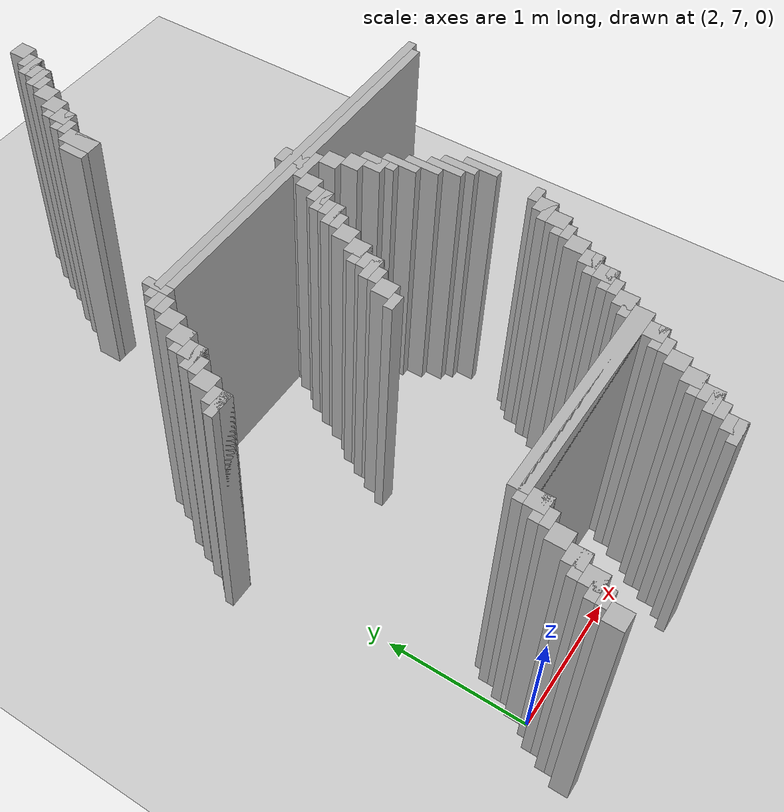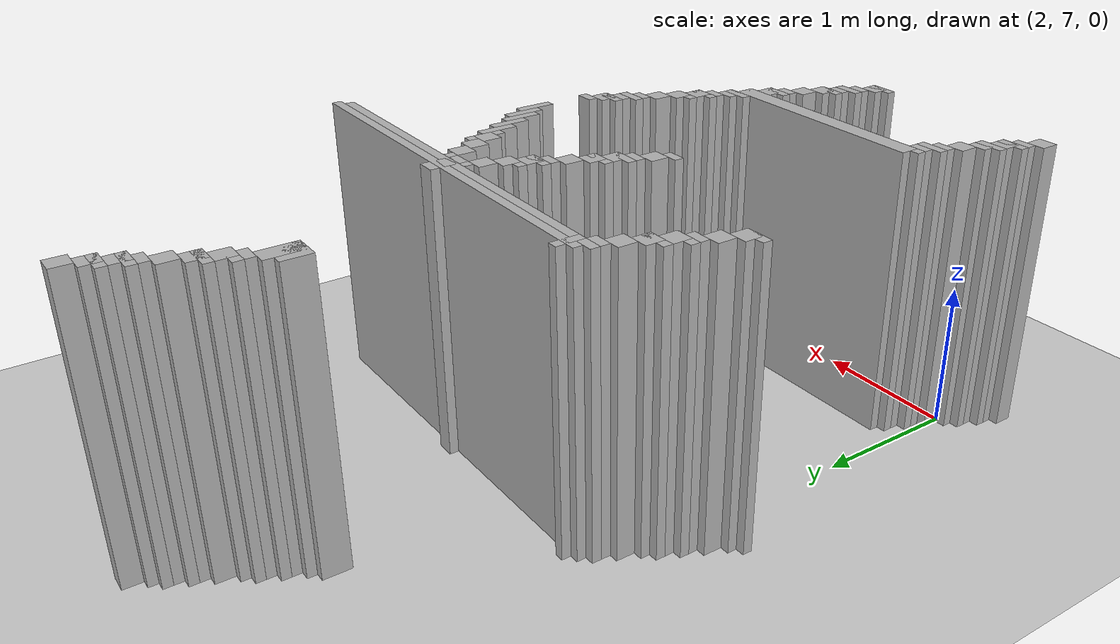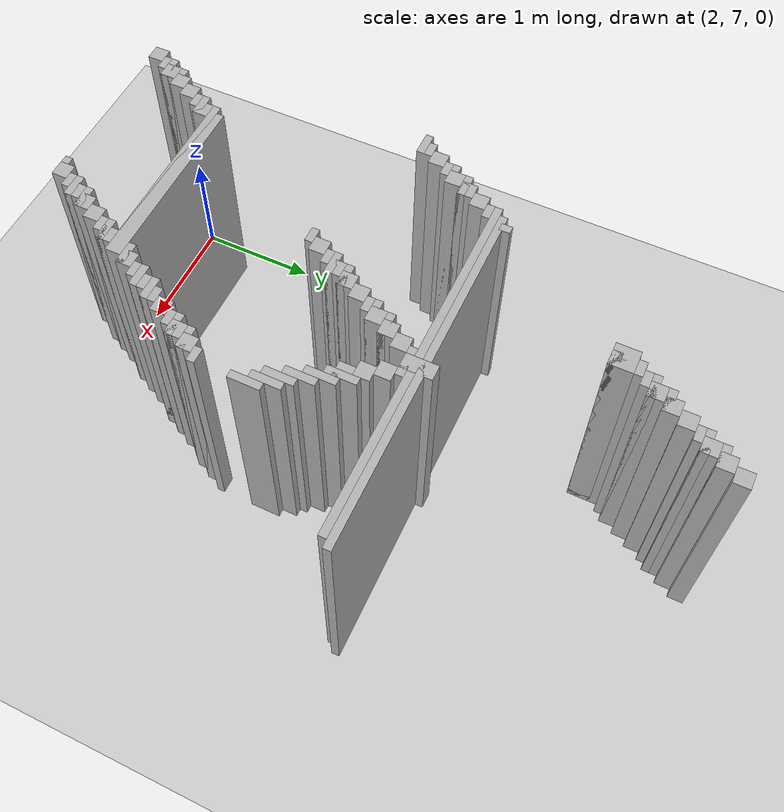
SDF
<sdf version="1.6">
 <world name="slam_world">
  <model name="ground_plane">
   <static>true</static>
   <link name="link">
    <collision name="collision">
     <geometry><plane><normal>0 0 1</normal><size>100 100</size></plane></geometry>
    </collision>
    <visual name="visual">
     <geometry><plane><normal>0 0 1</normal><size>100 100</size></plane></geometry>
     <material>
      <ambient>0.8 0.8 0.8 1</ambient>
      <diffuse>0.8 0.8 0.8 1</diffuse>
      <specular>0.8 0.8 0.8 1</specular>
     </material>
    </visual>
   </link>
  </model>
  <model name="wall_1160">
   <static>true</static>
   <pose>3.5106382978723403 12.063829787234042 1.0 0 0 0</pose>
   <link name="link">
    <collision name="collision">
     <geometry><box><size>0.1276595744680851 0.1276595744680851 2.0</size></box></geometry>
    </collision>
    <visual name="visual">
     <geometry><box><size>0.1276595744680851 0.1276595744680851 2.0</size></box></geometry>
     <material><ambient>0.5 0.5 0.5 1</ambient><diffuse>0.7 0.7 0.7 1</diffuse></material>
    </visual>
   </link>
  </model>
  <model name="wall_1170">
   <static>true</static>
   <pose>3.4468085106382977 11.936170212765957 1.0 0 0 0</pose>
   <link name="link">
    <collision name="collision">
     <geometry><box><size>0.1276595744680851 0.1276595744680851 2.0</size></box></geometry>
    </collision>
    <visual name="visual">
     <geometry><box><size>0.1276595744680851 0.1276595744680851 2.0</size></box></geometry>
     <material><ambient>0.5 0.5 0.5 1</ambient><diffuse>0.7 0.7 0.7 1</diffuse></material>
    </visual>
   </link>
  </model>
  <model name="wall_1180">
   <static>true</static>
   <pose>3.4148936170212765 11.904255319148936 1.0 0 0 0</pose>
   <link name="link">
    <collision name="collision">
     <geometry><box><size>0.19148936170212766 0.06382978723404255 2.0</size></box></geometry>
    </collision>
    <visual name="visual">
     <geometry><box><size>0.19148936170212766 0.06382978723404255 2.0</size></box></geometry>
     <material><ambient>0.5 0.5 0.5 1</ambient><diffuse>0.7 0.7 0.7 1</diffuse></material>
    </visual>
   </link>
  </model>
  <model name="wall_1190">
   <static>true</static>
   <pose>3.382978723404255 11.808510638297872 1.0 0 0 0</pose>
   <link name="link">
    <collision name="collision">
     <geometry><box><size>0.1276595744680851 0.1276595744680851 2.0</size></box></geometry>
    </collision>
    <visual name="visual">
     <geometry><box><size>0.1276595744680851 0.1276595744680851 2.0</size></box></geometry>
     <material><ambient>0.5 0.5 0.5 1</ambient><diffuse>0.7 0.7 0.7 1</diffuse></material>
    </visual>
   </link>
  </model>
  <model name="wall_1197">
   <static>true</static>
   <pose>3.351063829787234 11.77659574468085 1.0 0 0 0</pose>
   <link name="link">
    <collision name="collision">
     <geometry><box><size>0.19148936170212766 0.06382978723404255 2.0</size></box></geometry>
    </collision>
    <visual name="visual">
     <geometry><box><size>0.19148936170212766 0.06382978723404255 2.0</size></box></geometry>
     <material><ambient>0.5 0.5 0.5 1</ambient><diffuse>0.7 0.7 0.7 1</diffuse></material>
    </visual>
   </link>
  </model>
  <model name="wall_1207">
   <static>true</static>
   <pose>3.3191489361702127 11.712765957446807 1.0 0 0 0</pose>
   <link name="link">
    <collision name="collision">
     <geometry><box><size>0.1276595744680851 0.06382978723404255 2.0</size></box></geometry>
    </collision>
    <visual name="visual">
     <geometry><box><size>0.1276595744680851 0.06382978723404255 2.0</size></box></geometry>
     <material><ambient>0.5 0.5 0.5 1</ambient><diffuse>0.7 0.7 0.7 1</diffuse></material>
    </visual>
   </link>
  </model>
  <model name="wall_1213">
   <static>true</static>
   <pose>3.25531914893617 11.617021276595743 1.0 0 0 0</pose>
   <link name="link">
    <collision name="collision">
     <geometry><box><size>0.1276595744680851 0.1276595744680851 2.0</size></box></geometry>
    </collision>
    <visual name="visual">
     <geometry><box><size>0.1276595744680851 0.1276595744680851 2.0</size></box></geometry>
     <material><ambient>0.5 0.5 0.5 1</ambient><diffuse>0.7 0.7 0.7 1</diffuse></material>
    </visual>
   </link>
  </model>
  <model name="wall_1223">
   <static>true</static>
   <pose>3.1914893617021276 11.489361702127658 1.0 0 0 0</pose>
   <link name="link">
    <collision name="collision">
     <geometry><box><size>0.1276595744680851 0.1276595744680851 2.0</size></box></geometry>
    </collision>
    <visual name="visual">
     <geometry><box><size>0.1276595744680851 0.1276595744680851 2.0</size></box></geometry>
     <material><ambient>0.5 0.5 0.5 1</ambient><diffuse>0.7 0.7 0.7 1</diffuse></material>
    </visual>
   </link>
  </model>
  <model name="wall_1233">
   <static>true</static>
   <pose>3.1595744680851063 11.457446808510637 1.0 0 0 0</pose>
   <link name="link">
    <collision name="collision">
     <geometry><box><size>0.19148936170212766 0.06382978723404255 2.0</size></box></geometry>
    </collision>
    <visual name="visual">
     <geometry><box><size>0.19148936170212766 0.06382978723404255 2.0</size></box></geometry>
     <material><ambient>0.5 0.5 0.5 1</ambient><diffuse>0.7 0.7 0.7 1</diffuse></material>
    </visual>
   </link>
  </model>
  <model name="wall_1243">
   <static>true</static>
   <pose>3.127659574468085 11.361702127659573 1.0 0 0 0</pose>
   <link name="link">
    <collision name="collision">
     <geometry><box><size>0.1276595744680851 0.1276595744680851 2.0</size></box></geometry>
    </collision>
    <visual name="visual">
     <geometry><box><size>0.1276595744680851 0.1276595744680851 2.0</size></box></geometry>
     <material><ambient>0.5 0.5 0.5 1</ambient><diffuse>0.7 0.7 0.7 1</diffuse></material>
    </visual>
   </link>
  </model>
  <model name="wall_1249">
   <static>true</static>
   <pose>3.095744680851064 11.329787234042552 1.0 0 0 0</pose>
   <link name="link">
    <collision name="collision">
     <geometry><box><size>0.19148936170212766 0.06382978723404255 2.0</size></box></geometry>
    </collision>
    <visual name="visual">
     <geometry><box><size>0.19148936170212766 0.06382978723404255 2.0</size></box></geometry>
     <material><ambient>0.5 0.5 0.5 1</ambient><diffuse>0.7 0.7 0.7 1</diffuse></material>
    </visual>
   </link>
  </model>
  <model name="wall_1259">
   <static>true</static>
   <pose>3.0638297872340425 11.26595744680851 1.0 0 0 0</pose>
   <link name="link">
    <collision name="collision">
     <geometry><box><size>0.1276595744680851 0.06382978723404255 2.0</size></box></geometry>
    </collision>
    <visual name="visual">
     <geometry><box><size>0.1276595744680851 0.06382978723404255 2.0</size></box></geometry>
     <material><ambient>0.5 0.5 0.5 1</ambient><diffuse>0.7 0.7 0.7 1</diffuse></material>
    </visual>
   </link>
  </model>
  <model name="wall_1265">
   <static>true</static>
   <pose>2.9999999999999996 11.106382978723403 1.0 0 0 0</pose>
   <link name="link">
    <collision name="collision">
     <geometry><box><size>0.1276595744680851 0.2553191489361702 2.0</size></box></geometry>
    </collision>
    <visual name="visual">
     <geometry><box><size>0.1276595744680851 0.2553191489361702 2.0</size></box></geometry>
     <material><ambient>0.5 0.5 0.5 1</ambient><diffuse>0.7 0.7 0.7 1</diffuse></material>
    </visual>
   </link>
  </model>
  <model name="wall_1272">
   <static>true</static>
   <pose>2.9680851063829783 11.074468085106382 1.0 0 0 0</pose>
   <link name="link">
    <collision name="collision">
     <geometry><box><size>0.19148936170212766 0.19148936170212766 2.0</size></box></geometry>
    </collision>
    <visual name="visual">
     <geometry><box><size>0.19148936170212766 0.19148936170212766 2.0</size></box></geometry>
     <material><ambient>0.5 0.5 0.5 1</ambient><diffuse>0.7 0.7 0.7 1</diffuse></material>
    </visual>
   </link>
  </model>
  <model name="wall_1366">
   <static>true</static>
   <pose>2.2659574468085104 9.861702127659573 1.0 0 0 0</pose>
   <link name="link">
    <collision name="collision">
     <geometry><box><size>0.06382978723404255 0.19148936170212766 2.0</size></box></geometry>
    </collision>
    <visual name="visual">
     <geometry><box><size>0.06382978723404255 0.19148936170212766 2.0</size></box></geometry>
     <material><ambient>0.5 0.5 0.5 1</ambient><diffuse>0.7 0.7 0.7 1</diffuse></material>
    </visual>
   </link>
  </model>
  <model name="wall_1367">
   <static>true</static>
   <pose>3.6382978723404253 9.829787234042552 1.0 0 0 0</pose>
   <link name="link">
    <collision name="collision">
     <geometry><box><size>0.1276595744680851 0.2553191489361702 2.0</size></box></geometry>
    </collision>
    <visual name="visual">
     <geometry><box><size>0.1276595744680851 0.2553191489361702 2.0</size></box></geometry>
     <material><ambient>0.5 0.5 0.5 1</ambient><diffuse>0.7 0.7 0.7 1</diffuse></material>
    </visual>
   </link>
  </model>
  <model name="wall_1374">
   <static>true</static>
   <pose>3.6382978723404253 9.861702127659573 1.0 0 0 0</pose>
   <link name="link">
    <collision name="collision">
     <geometry><box><size>2.936170212765957 0.06382978723404255 2.0</size></box></geometry>
    </collision>
    <visual name="visual">
     <geometry><box><size>2.936170212765957 0.06382978723404255 2.0</size></box></geometry>
     <material><ambient>0.5 0.5 0.5 1</ambient><diffuse>0.7 0.7 0.7 1</diffuse></material>
    </visual>
   </link>
  </model>
  <model name="wall_1379">
   <static>true</static>
   <pose>3.574468085106383 9.797872340425531 1.0 0 0 0</pose>
   <link name="link">
    <collision name="collision">
     <geometry><box><size>2.936170212765957 0.06382978723404255 2.0</size></box></geometry>
    </collision>
    <visual name="visual">
     <geometry><box><size>2.936170212765957 0.06382978723404255 2.0</size></box></geometry>
     <material><ambient>0.5 0.5 0.5 1</ambient><diffuse>0.7 0.7 0.7 1</diffuse></material>
    </visual>
   </link>
  </model>
  <model name="wall_1384">
   <static>true</static>
   <pose>2.1702127659574466 9.734042553191488 1.0 0 0 0</pose>
   <link name="link">
    <collision name="collision">
     <geometry><box><size>0.1276595744680851 0.06382978723404255 2.0</size></box></geometry>
    </collision>
    <visual name="visual">
     <geometry><box><size>0.1276595744680851 0.06382978723404255 2.0</size></box></geometry>
     <material><ambient>0.5 0.5 0.5 1</ambient><diffuse>0.7 0.7 0.7 1</diffuse></material>
    </visual>
   </link>
  </model>
  <model name="wall_1385">
   <static>true</static>
   <pose>3.6382978723404253 9.734042553191488 1.0 0 0 0</pose>
   <link name="link">
    <collision name="collision">
     <geometry><box><size>0.2553191489361702 0.06382978723404255 2.0</size></box></geometry>
    </collision>
    <visual name="visual">
     <geometry><box><size>0.2553191489361702 0.06382978723404255 2.0</size></box></geometry>
     <material><ambient>0.5 0.5 0.5 1</ambient><diffuse>0.7 0.7 0.7 1</diffuse></material>
    </visual>
   </link>
  </model>
  <model name="wall_1390">
   <static>true</static>
   <pose>2.106382978723404 9.638297872340425 1.0 0 0 0</pose>
   <link name="link">
    <collision name="collision">
     <geometry><box><size>0.1276595744680851 0.1276595744680851 2.0</size></box></geometry>
    </collision>
    <visual name="visual">
     <geometry><box><size>0.1276595744680851 0.1276595744680851 2.0</size></box></geometry>
     <material><ambient>0.5 0.5 0.5 1</ambient><diffuse>0.7 0.7 0.7 1</diffuse></material>
    </visual>
   </link>
  </model>
  <model name="wall_1391">
   <static>true</static>
   <pose>3.5106382978723403 9.638297872340425 1.0 0 0 0</pose>
   <link name="link">
    <collision name="collision">
     <geometry><box><size>0.1276595744680851 0.1276595744680851 2.0</size></box></geometry>
    </collision>
    <visual name="visual">
     <geometry><box><size>0.1276595744680851 0.1276595744680851 2.0</size></box></geometry>
     <material><ambient>0.5 0.5 0.5 1</ambient><diffuse>0.7 0.7 0.7 1</diffuse></material>
    </visual>
   </link>
  </model>
  <model name="wall_1392">
   <static>true</static>
   <pose>3.7659574468085104 9.638297872340425 1.0 0 0 0</pose>
   <link name="link">
    <collision name="collision">
     <geometry><box><size>0.1276595744680851 0.1276595744680851 2.0</size></box></geometry>
    </collision>
    <visual name="visual">
     <geometry><box><size>0.1276595744680851 0.1276595744680851 2.0</size></box></geometry>
     <material><ambient>0.5 0.5 0.5 1</ambient><diffuse>0.7 0.7 0.7 1</diffuse></material>
    </visual>
   </link>
  </model>
  <model name="wall_1398">
   <static>true</static>
   <pose>2.0425531914893615 9.51063829787234 1.0 0 0 0</pose>
   <link name="link">
    <collision name="collision">
     <geometry><box><size>0.1276595744680851 0.1276595744680851 2.0</size></box></geometry>
    </collision>
    <visual name="visual">
     <geometry><box><size>0.1276595744680851 0.1276595744680851 2.0</size></box></geometry>
     <material><ambient>0.5 0.5 0.5 1</ambient><diffuse>0.7 0.7 0.7 1</diffuse></material>
    </visual>
   </link>
  </model>
  <model name="wall_1399">
   <static>true</static>
   <pose>3.4468085106382977 9.51063829787234 1.0 0 0 0</pose>
   <link name="link">
    <collision name="collision">
     <geometry><box><size>0.1276595744680851 0.1276595744680851 2.0</size></box></geometry>
    </collision>
    <visual name="visual">
     <geometry><box><size>0.1276595744680851 0.1276595744680851 2.0</size></box></geometry>
     <material><ambient>0.5 0.5 0.5 1</ambient><diffuse>0.7 0.7 0.7 1</diffuse></material>
    </visual>
   </link>
  </model>
  <model name="wall_1400">
   <static>true</static>
   <pose>3.829787234042553 9.51063829787234 1.0 0 0 0</pose>
   <link name="link">
    <collision name="collision">
     <geometry><box><size>0.1276595744680851 0.1276595744680851 2.0</size></box></geometry>
    </collision>
    <visual name="visual">
     <geometry><box><size>0.1276595744680851 0.1276595744680851 2.0</size></box></geometry>
     <material><ambient>0.5 0.5 0.5 1</ambient><diffuse>0.7 0.7 0.7 1</diffuse></material>
    </visual>
   </link>
  </model>
  <model name="wall_1406">
   <static>true</static>
   <pose>2.0106382978723403 9.478723404255318 1.0 0 0 0</pose>
   <link name="link">
    <collision name="collision">
     <geometry><box><size>0.19148936170212766 0.06382978723404255 2.0</size></box></geometry>
    </collision>
    <visual name="visual">
     <geometry><box><size>0.19148936170212766 0.06382978723404255 2.0</size></box></geometry>
     <material><ambient>0.5 0.5 0.5 1</ambient><diffuse>0.7 0.7 0.7 1</diffuse></material>
    </visual>
   </link>
  </model>
  <model name="wall_1407">
   <static>true</static>
   <pose>3.4148936170212765 9.478723404255318 1.0 0 0 0</pose>
   <link name="link">
    <collision name="collision">
     <geometry><box><size>0.19148936170212766 0.06382978723404255 2.0</size></box></geometry>
    </collision>
    <visual name="visual">
     <geometry><box><size>0.19148936170212766 0.06382978723404255 2.0</size></box></geometry>
     <material><ambient>0.5 0.5 0.5 1</ambient><diffuse>0.7 0.7 0.7 1</diffuse></material>
    </visual>
   </link>
  </model>
  <model name="wall_1408">
   <static>true</static>
   <pose>3.9255319148936167 9.382978723404255 1.0 0 0 0</pose>
   <link name="link">
    <collision name="collision">
     <geometry><box><size>0.06382978723404255 0.2553191489361702 2.0</size></box></geometry>
    </collision>
    <visual name="visual">
     <geometry><box><size>0.06382978723404255 0.2553191489361702 2.0</size></box></geometry>
     <material><ambient>0.5 0.5 0.5 1</ambient><diffuse>0.7 0.7 0.7 1</diffuse></material>
    </visual>
   </link>
  </model>
  <model name="wall_1414">
   <static>true</static>
   <pose>1.978723404255319 9.382978723404255 1.0 0 0 0</pose>
   <link name="link">
    <collision name="collision">
     <geometry><box><size>0.1276595744680851 0.1276595744680851 2.0</size></box></geometry>
    </collision>
    <visual name="visual">
     <geometry><box><size>0.1276595744680851 0.1276595744680851 2.0</size></box></geometry>
     <material><ambient>0.5 0.5 0.5 1</ambient><diffuse>0.7 0.7 0.7 1</diffuse></material>
    </visual>
   </link>
  </model>
  <model name="wall_1415">
   <static>true</static>
   <pose>3.382978723404255 9.382978723404255 1.0 0 0 0</pose>
   <link name="link">
    <collision name="collision">
     <geometry><box><size>0.1276595744680851 0.1276595744680851 2.0</size></box></geometry>
    </collision>
    <visual name="visual">
     <geometry><box><size>0.1276595744680851 0.1276595744680851 2.0</size></box></geometry>
     <material><ambient>0.5 0.5 0.5 1</ambient><diffuse>0.7 0.7 0.7 1</diffuse></material>
    </visual>
   </link>
  </model>
  <model name="wall_1416">
   <static>true</static>
   <pose>3.8936170212765955 9.382978723404255 1.0 0 0 0</pose>
   <link name="link">
    <collision name="collision">
     <geometry><box><size>0.1276595744680851 0.1276595744680851 2.0</size></box></geometry>
    </collision>
    <visual name="visual">
     <geometry><box><size>0.1276595744680851 0.1276595744680851 2.0</size></box></geometry>
     <material><ambient>0.5 0.5 0.5 1</ambient><diffuse>0.7 0.7 0.7 1</diffuse></material>
    </visual>
   </link>
  </model>
  <model name="wall_1420">
   <static>true</static>
   <pose>1.9468085106382977 9.351063829787233 1.0 0 0 0</pose>
   <link name="link">
    <collision name="collision">
     <geometry><box><size>0.19148936170212766 0.06382978723404255 2.0</size></box></geometry>
    </collision>
    <visual name="visual">
     <geometry><box><size>0.19148936170212766 0.06382978723404255 2.0</size></box></geometry>
     <material><ambient>0.5 0.5 0.5 1</ambient><diffuse>0.7 0.7 0.7 1</diffuse></material>
    </visual>
   </link>
  </model>
  <model name="wall_1421">
   <static>true</static>
   <pose>3.351063829787234 9.351063829787233 1.0 0 0 0</pose>
   <link name="link">
    <collision name="collision">
     <geometry><box><size>0.19148936170212766 0.06382978723404255 2.0</size></box></geometry>
    </collision>
    <visual name="visual">
     <geometry><box><size>0.19148936170212766 0.06382978723404255 2.0</size></box></geometry>
     <material><ambient>0.5 0.5 0.5 1</ambient><diffuse>0.7 0.7 0.7 1</diffuse></material>
    </visual>
   </link>
  </model>
  <model name="wall_1422">
   <static>true</static>
   <pose>3.9893617021276593 9.25531914893617 1.0 0 0 0</pose>
   <link name="link">
    <collision name="collision">
     <geometry><box><size>0.06382978723404255 0.2553191489361702 2.0</size></box></geometry>
    </collision>
    <visual name="visual">
     <geometry><box><size>0.06382978723404255 0.2553191489361702 2.0</size></box></geometry>
     <material><ambient>0.5 0.5 0.5 1</ambient><diffuse>0.7 0.7 0.7 1</diffuse></material>
    </visual>
   </link>
  </model>
  <model name="wall_1428">
   <static>true</static>
   <pose>1.9148936170212765 9.287234042553191 1.0 0 0 0</pose>
   <link name="link">
    <collision name="collision">
     <geometry><box><size>0.1276595744680851 0.06382978723404255 2.0</size></box></geometry>
    </collision>
    <visual name="visual">
     <geometry><box><size>0.1276595744680851 0.06382978723404255 2.0</size></box></geometry>
     <material><ambient>0.5 0.5 0.5 1</ambient><diffuse>0.7 0.7 0.7 1</diffuse></material>
    </visual>
   </link>
  </model>
  <model name="wall_1429">
   <static>true</static>
   <pose>3.3191489361702127 9.287234042553191 1.0 0 0 0</pose>
   <link name="link">
    <collision name="collision">
     <geometry><box><size>0.1276595744680851 0.06382978723404255 2.0</size></box></geometry>
    </collision>
    <visual name="visual">
     <geometry><box><size>0.1276595744680851 0.06382978723404255 2.0</size></box></geometry>
     <material><ambient>0.5 0.5 0.5 1</ambient><diffuse>0.7 0.7 0.7 1</diffuse></material>
    </visual>
   </link>
  </model>
  <model name="wall_1433">
   <static>true</static>
   <pose>1.851063829787234 9.191489361702127 1.0 0 0 0</pose>
   <link name="link">
    <collision name="collision">
     <geometry><box><size>0.1276595744680851 0.1276595744680851 2.0</size></box></geometry>
    </collision>
    <visual name="visual">
     <geometry><box><size>0.1276595744680851 0.1276595744680851 2.0</size></box></geometry>
     <material><ambient>0.5 0.5 0.5 1</ambient><diffuse>0.7 0.7 0.7 1</diffuse></material>
    </visual>
   </link>
  </model>
  <model name="wall_1434">
   <static>true</static>
   <pose>3.25531914893617 9.191489361702127 1.0 0 0 0</pose>
   <link name="link">
    <collision name="collision">
     <geometry><box><size>0.1276595744680851 0.1276595744680851 2.0</size></box></geometry>
    </collision>
    <visual name="visual">
     <geometry><box><size>0.1276595744680851 0.1276595744680851 2.0</size></box></geometry>
     <material><ambient>0.5 0.5 0.5 1</ambient><diffuse>0.7 0.7 0.7 1</diffuse></material>
    </visual>
   </link>
  </model>
  <model name="wall_1435">
   <static>true</static>
   <pose>4.053191489361701 9.127659574468085 1.0 0 0 0</pose>
   <link name="link">
    <collision name="collision">
     <geometry><box><size>0.06382978723404255 0.2553191489361702 2.0</size></box></geometry>
    </collision>
    <visual name="visual">
     <geometry><box><size>0.06382978723404255 0.2553191489361702 2.0</size></box></geometry>
     <material><ambient>0.5 0.5 0.5 1</ambient><diffuse>0.7 0.7 0.7 1</diffuse></material>
    </visual>
   </link>
  </model>
  <model name="wall_1441">
   <static>true</static>
   <pose>1.7872340425531914 9.063829787234042 1.0 0 0 0</pose>
   <link name="link">
    <collision name="collision">
     <geometry><box><size>0.1276595744680851 0.1276595744680851 2.0</size></box></geometry>
    </collision>
    <visual name="visual">
     <geometry><box><size>0.1276595744680851 0.1276595744680851 2.0</size></box></geometry>
     <material><ambient>0.5 0.5 0.5 1</ambient><diffuse>0.7 0.7 0.7 1</diffuse></material>
    </visual>
   </link>
  </model>
  <model name="wall_1442">
   <static>true</static>
   <pose>3.1914893617021276 9.063829787234042 1.0 0 0 0</pose>
   <link name="link">
    <collision name="collision">
     <geometry><box><size>0.1276595744680851 0.1276595744680851 2.0</size></box></geometry>
    </collision>
    <visual name="visual">
     <geometry><box><size>0.1276595744680851 0.1276595744680851 2.0</size></box></geometry>
     <material><ambient>0.5 0.5 0.5 1</ambient><diffuse>0.7 0.7 0.7 1</diffuse></material>
    </visual>
   </link>
  </model>
  <model name="wall_1443">
   <static>true</static>
   <pose>4.117021276595745 9.0 1.0 0 0 0</pose>
   <link name="link">
    <collision name="collision">
     <geometry><box><size>0.06382978723404255 0.2553191489361702 2.0</size></box></geometry>
    </collision>
    <visual name="visual">
     <geometry><box><size>0.06382978723404255 0.2553191489361702 2.0</size></box></geometry>
     <material><ambient>0.5 0.5 0.5 1</ambient><diffuse>0.7 0.7 0.7 1</diffuse></material>
    </visual>
   </link>
  </model>
  <model name="wall_1449">
   <static>true</static>
   <pose>1.7553191489361701 9.03191489361702 1.0 0 0 0</pose>
   <link name="link">
    <collision name="collision">
     <geometry><box><size>0.19148936170212766 0.06382978723404255 2.0</size></box></geometry>
    </collision>
    <visual name="visual">
     <geometry><box><size>0.19148936170212766 0.06382978723404255 2.0</size></box></geometry>
     <material><ambient>0.5 0.5 0.5 1</ambient><diffuse>0.7 0.7 0.7 1</diffuse></material>
    </visual>
   </link>
  </model>
  <model name="wall_1450">
   <static>true</static>
   <pose>3.1595744680851063 9.03191489361702 1.0 0 0 0</pose>
   <link name="link">
    <collision name="collision">
     <geometry><box><size>0.19148936170212766 0.06382978723404255 2.0</size></box></geometry>
    </collision>
    <visual name="visual">
     <geometry><box><size>0.19148936170212766 0.06382978723404255 2.0</size></box></geometry>
     <material><ambient>0.5 0.5 0.5 1</ambient><diffuse>0.7 0.7 0.7 1</diffuse></material>
    </visual>
   </link>
  </model>
  <model name="wall_1451">
   <static>true</static>
   <pose>4.180851063829787 8.936170212765957 1.0 0 0 0</pose>
   <link name="link">
    <collision name="collision">
     <geometry><box><size>0.06382978723404255 0.2553191489361702 2.0</size></box></geometry>
    </collision>
    <visual name="visual">
     <geometry><box><size>0.06382978723404255 0.2553191489361702 2.0</size></box></geometry>
     <material><ambient>0.5 0.5 0.5 1</ambient><diffuse>0.7 0.7 0.7 1</diffuse></material>
    </visual>
   </link>
  </model>
  <model name="wall_1458">
   <static>true</static>
   <pose>3.127659574468085 8.936170212765957 1.0 0 0 0</pose>
   <link name="link">
    <collision name="collision">
     <geometry><box><size>0.1276595744680851 0.1276595744680851 2.0</size></box></geometry>
    </collision>
    <visual name="visual">
     <geometry><box><size>0.1276595744680851 0.1276595744680851 2.0</size></box></geometry>
     <material><ambient>0.5 0.5 0.5 1</ambient><diffuse>0.7 0.7 0.7 1</diffuse></material>
    </visual>
   </link>
  </model>
  <model name="wall_1463">
   <static>true</static>
   <pose>3.095744680851064 8.904255319148936 1.0 0 0 0</pose>
   <link name="link">
    <collision name="collision">
     <geometry><box><size>0.19148936170212766 0.06382978723404255 2.0</size></box></geometry>
    </collision>
    <visual name="visual">
     <geometry><box><size>0.19148936170212766 0.06382978723404255 2.0</size></box></geometry>
     <material><ambient>0.5 0.5 0.5 1</ambient><diffuse>0.7 0.7 0.7 1</diffuse></material>
    </visual>
   </link>
  </model>
  <model name="wall_1464">
   <static>true</static>
   <pose>4.24468085106383 8.808510638297872 1.0 0 0 0</pose>
   <link name="link">
    <collision name="collision">
     <geometry><box><size>0.06382978723404255 0.2553191489361702 2.0</size></box></geometry>
    </collision>
    <visual name="visual">
     <geometry><box><size>0.06382978723404255 0.2553191489361702 2.0</size></box></geometry>
     <material><ambient>0.5 0.5 0.5 1</ambient><diffuse>0.7 0.7 0.7 1</diffuse></material>
    </visual>
   </link>
  </model>
  <model name="wall_1471">
   <static>true</static>
   <pose>3.0638297872340425 8.840425531914892 1.0 0 0 0</pose>
   <link name="link">
    <collision name="collision">
     <geometry><box><size>0.1276595744680851 0.06382978723404255 2.0</size></box></geometry>
    </collision>
    <visual name="visual">
     <geometry><box><size>0.1276595744680851 0.06382978723404255 2.0</size></box></geometry>
     <material><ambient>0.5 0.5 0.5 1</ambient><diffuse>0.7 0.7 0.7 1</diffuse></material>
    </visual>
   </link>
  </model>
  <model name="wall_1476">
   <static>true</static>
   <pose>2.9999999999999996 8.74468085106383 1.0 0 0 0</pose>
   <link name="link">
    <collision name="collision">
     <geometry><box><size>0.1276595744680851 0.1276595744680851 2.0</size></box></geometry>
    </collision>
    <visual name="visual">
     <geometry><box><size>0.1276595744680851 0.1276595744680851 2.0</size></box></geometry>
     <material><ambient>0.5 0.5 0.5 1</ambient><diffuse>0.7 0.7 0.7 1</diffuse></material>
    </visual>
   </link>
  </model>
  <model name="wall_1489">
   <static>true</static>
   <pose>2.936170212765957 8.648936170212766 1.0 0 0 0</pose>
   <link name="link">
    <collision name="collision">
     <geometry><box><size>0.1276595744680851 0.06382978723404255 2.0</size></box></geometry>
    </collision>
    <visual name="visual">
     <geometry><box><size>0.1276595744680851 0.06382978723404255 2.0</size></box></geometry>
     <material><ambient>0.5 0.5 0.5 1</ambient><diffuse>0.7 0.7 0.7 1</diffuse></material>
    </visual>
   </link>
  </model>
  <model name="wall_1506">
   <static>true</static>
   <pose>4.212765957446808 8.393617021276595 1.0 0 0 0</pose>
   <link name="link">
    <collision name="collision">
     <geometry><box><size>0.1276595744680851 0.06382978723404255 2.0</size></box></geometry>
    </collision>
    <visual name="visual">
     <geometry><box><size>0.1276595744680851 0.06382978723404255 2.0</size></box></geometry>
     <material><ambient>0.5 0.5 0.5 1</ambient><diffuse>0.7 0.7 0.7 1</diffuse></material>
    </visual>
   </link>
  </model>
  <model name="wall_1510">
   <static>true</static>
   <pose>4.148936170212766 8.297872340425531 1.0 0 0 0</pose>
   <link name="link">
    <collision name="collision">
     <geometry><box><size>0.1276595744680851 0.1276595744680851 2.0</size></box></geometry>
    </collision>
    <visual name="visual">
     <geometry><box><size>0.1276595744680851 0.1276595744680851 2.0</size></box></geometry>
     <material><ambient>0.5 0.5 0.5 1</ambient><diffuse>0.7 0.7 0.7 1</diffuse></material>
    </visual>
   </link>
  </model>
  <model name="wall_1515">
   <static>true</static>
   <pose>4.117021276595745 8.26595744680851 1.0 0 0 0</pose>
   <link name="link">
    <collision name="collision">
     <geometry><box><size>0.19148936170212766 0.06382978723404255 2.0</size></box></geometry>
    </collision>
    <visual name="visual">
     <geometry><box><size>0.19148936170212766 0.06382978723404255 2.0</size></box></geometry>
     <material><ambient>0.5 0.5 0.5 1</ambient><diffuse>0.7 0.7 0.7 1</diffuse></material>
    </visual>
   </link>
  </model>
  <model name="wall_1519">
   <static>true</static>
   <pose>4.085106382978723 8.170212765957446 1.0 0 0 0</pose>
   <link name="link">
    <collision name="collision">
     <geometry><box><size>0.1276595744680851 0.1276595744680851 2.0</size></box></geometry>
    </collision>
    <visual name="visual">
     <geometry><box><size>0.1276595744680851 0.1276595744680851 2.0</size></box></geometry>
     <material><ambient>0.5 0.5 0.5 1</ambient><diffuse>0.7 0.7 0.7 1</diffuse></material>
    </visual>
   </link>
  </model>
  <model name="wall_1522">
   <static>true</static>
   <pose>4.053191489361701 8.138297872340425 1.0 0 0 0</pose>
   <link name="link">
    <collision name="collision">
     <geometry><box><size>0.19148936170212766 0.06382978723404255 2.0</size></box></geometry>
    </collision>
    <visual name="visual">
     <geometry><box><size>0.19148936170212766 0.06382978723404255 2.0</size></box></geometry>
     <material><ambient>0.5 0.5 0.5 1</ambient><diffuse>0.7 0.7 0.7 1</diffuse></material>
    </visual>
   </link>
  </model>
  <model name="wall_1526">
   <static>true</static>
   <pose>4.0212765957446805 8.074468085106382 1.0 0 0 0</pose>
   <link name="link">
    <collision name="collision">
     <geometry><box><size>0.1276595744680851 0.06382978723404255 2.0</size></box></geometry>
    </collision>
    <visual name="visual">
     <geometry><box><size>0.1276595744680851 0.06382978723404255 2.0</size></box></geometry>
     <material><ambient>0.5 0.5 0.5 1</ambient><diffuse>0.7 0.7 0.7 1</diffuse></material>
    </visual>
   </link>
  </model>
  <model name="wall_1528">
   <static>true</static>
   <pose>3.957446808510638 7.978723404255319 1.0 0 0 0</pose>
   <link name="link">
    <collision name="collision">
     <geometry><box><size>0.1276595744680851 0.1276595744680851 2.0</size></box></geometry>
    </collision>
    <visual name="visual">
     <geometry><box><size>0.1276595744680851 0.1276595744680851 2.0</size></box></geometry>
     <material><ambient>0.5 0.5 0.5 1</ambient><diffuse>0.7 0.7 0.7 1</diffuse></material>
    </visual>
   </link>
  </model>
  <model name="wall_1533">
   <static>true</static>
   <pose>3.8936170212765955 7.8510638297872335 1.0 0 0 0</pose>
   <link name="link">
    <collision name="collision">
     <geometry><box><size>0.1276595744680851 0.1276595744680851 2.0</size></box></geometry>
    </collision>
    <visual name="visual">
     <geometry><box><size>0.1276595744680851 0.1276595744680851 2.0</size></box></geometry>
     <material><ambient>0.5 0.5 0.5 1</ambient><diffuse>0.7 0.7 0.7 1</diffuse></material>
    </visual>
   </link>
  </model>
  <model name="wall_1538">
   <static>true</static>
   <pose>3.861702127659574 7.819148936170212 1.0 0 0 0</pose>
   <link name="link">
    <collision name="collision">
     <geometry><box><size>0.19148936170212766 0.06382978723404255 2.0</size></box></geometry>
    </collision>
    <visual name="visual">
     <geometry><box><size>0.19148936170212766 0.06382978723404255 2.0</size></box></geometry>
     <material><ambient>0.5 0.5 0.5 1</ambient><diffuse>0.7 0.7 0.7 1</diffuse></material>
    </visual>
   </link>
  </model>
  <model name="wall_1542">
   <static>true</static>
   <pose>3.829787234042553 7.723404255319148 1.0 0 0 0</pose>
   <link name="link">
    <collision name="collision">
     <geometry><box><size>0.1276595744680851 0.1276595744680851 2.0</size></box></geometry>
    </collision>
    <visual name="visual">
     <geometry><box><size>0.1276595744680851 0.1276595744680851 2.0</size></box></geometry>
     <material><ambient>0.5 0.5 0.5 1</ambient><diffuse>0.7 0.7 0.7 1</diffuse></material>
    </visual>
   </link>
  </model>
  <model name="wall_1544">
   <static>true</static>
   <pose>3.7978723404255317 7.691489361702127 1.0 0 0 0</pose>
   <link name="link">
    <collision name="collision">
     <geometry><box><size>0.19148936170212766 0.06382978723404255 2.0</size></box></geometry>
    </collision>
    <visual name="visual">
     <geometry><box><size>0.19148936170212766 0.06382978723404255 2.0</size></box></geometry>
     <material><ambient>0.5 0.5 0.5 1</ambient><diffuse>0.7 0.7 0.7 1</diffuse></material>
    </visual>
   </link>
  </model>
  <model name="wall_1548">
   <static>true</static>
   <pose>3.7659574468085104 7.627659574468084 1.0 0 0 0</pose>
   <link name="link">
    <collision name="collision">
     <geometry><box><size>0.1276595744680851 0.06382978723404255 2.0</size></box></geometry>
    </collision>
    <visual name="visual">
     <geometry><box><size>0.1276595744680851 0.06382978723404255 2.0</size></box></geometry>
     <material><ambient>0.5 0.5 0.5 1</ambient><diffuse>0.7 0.7 0.7 1</diffuse></material>
    </visual>
   </link>
  </model>
  <model name="wall_1550">
   <static>true</static>
   <pose>3.702127659574468 7.531914893617021 1.0 0 0 0</pose>
   <link name="link">
    <collision name="collision">
     <geometry><box><size>0.1276595744680851 0.1276595744680851 2.0</size></box></geometry>
    </collision>
    <visual name="visual">
     <geometry><box><size>0.1276595744680851 0.1276595744680851 2.0</size></box></geometry>
     <material><ambient>0.5 0.5 0.5 1</ambient><diffuse>0.7 0.7 0.7 1</diffuse></material>
    </visual>
   </link>
  </model>
  <model name="wall_1554">
   <static>true</static>
   <pose>3.6702127659574466 7.499999999999999 1.0 0 0 0</pose>
   <link name="link">
    <collision name="collision">
     <geometry><box><size>0.19148936170212766 0.06382978723404255 2.0</size></box></geometry>
    </collision>
    <visual name="visual">
     <geometry><box><size>0.19148936170212766 0.06382978723404255 2.0</size></box></geometry>
     <material><ambient>0.5 0.5 0.5 1</ambient><diffuse>0.7 0.7 0.7 1</diffuse></material>
    </visual>
   </link>
  </model>
  <model name="wall_1557">
   <static>true</static>
   <pose>2.936170212765957 7.404255319148936 1.0 0 0 0</pose>
   <link name="link">
    <collision name="collision">
     <geometry><box><size>1.5319148936170213 0.1276595744680851 2.0</size></box></geometry>
    </collision>
    <visual name="visual">
     <geometry><box><size>1.5319148936170213 0.1276595744680851 2.0</size></box></geometry>
     <material><ambient>0.5 0.5 0.5 1</ambient><diffuse>0.7 0.7 0.7 1</diffuse></material>
    </visual>
   </link>
  </model>
  <model name="wall_1565">
   <static>true</static>
   <pose>2.9042553191489358 7.372340425531914 1.0 0 0 0</pose>
   <link name="link">
    <collision name="collision">
     <geometry><box><size>1.5957446808510638 0.06382978723404255 2.0</size></box></geometry>
    </collision>
    <visual name="visual">
     <geometry><box><size>1.5957446808510638 0.06382978723404255 2.0</size></box></geometry>
     <material><ambient>0.5 0.5 0.5 1</ambient><diffuse>0.7 0.7 0.7 1</diffuse></material>
    </visual>
   </link>
  </model>
  <model name="wall_1572">
   <static>true</static>
   <pose>2.1702127659574466 7.276595744680851 1.0 0 0 0</pose>
   <link name="link">
    <collision name="collision">
     <geometry><box><size>0.1276595744680851 0.1276595744680851 2.0</size></box></geometry>
    </collision>
    <visual name="visual">
     <geometry><box><size>0.1276595744680851 0.1276595744680851 2.0</size></box></geometry>
     <material><ambient>0.5 0.5 0.5 1</ambient><diffuse>0.7 0.7 0.7 1</diffuse></material>
    </visual>
   </link>
  </model>
  <model name="wall_1573">
   <static>true</static>
   <pose>3.574468085106383 7.276595744680851 1.0 0 0 0</pose>
   <link name="link">
    <collision name="collision">
     <geometry><box><size>0.1276595744680851 0.1276595744680851 2.0</size></box></geometry>
    </collision>
    <visual name="visual">
     <geometry><box><size>0.1276595744680851 0.1276595744680851 2.0</size></box></geometry>
     <material><ambient>0.5 0.5 0.5 1</ambient><diffuse>0.7 0.7 0.7 1</diffuse></material>
    </visual>
   </link>
  </model>
  <model name="wall_1581">
   <static>true</static>
   <pose>2.1382978723404253 7.244680851063829 1.0 0 0 0</pose>
   <link name="link">
    <collision name="collision">
     <geometry><box><size>0.19148936170212766 0.06382978723404255 2.0</size></box></geometry>
    </collision>
    <visual name="visual">
     <geometry><box><size>0.19148936170212766 0.06382978723404255 2.0</size></box></geometry>
     <material><ambient>0.5 0.5 0.5 1</ambient><diffuse>0.7 0.7 0.7 1</diffuse></material>
    </visual>
   </link>
  </model>
  <model name="wall_1582">
   <static>true</static>
   <pose>3.5425531914893615 7.244680851063829 1.0 0 0 0</pose>
   <link name="link">
    <collision name="collision">
     <geometry><box><size>0.19148936170212766 0.06382978723404255 2.0</size></box></geometry>
    </collision>
    <visual name="visual">
     <geometry><box><size>0.19148936170212766 0.06382978723404255 2.0</size></box></geometry>
     <material><ambient>0.5 0.5 0.5 1</ambient><diffuse>0.7 0.7 0.7 1</diffuse></material>
    </visual>
   </link>
  </model>
  <model name="wall_1590">
   <static>true</static>
   <pose>2.106382978723404 7.180851063829786 1.0 0 0 0</pose>
   <link name="link">
    <collision name="collision">
     <geometry><box><size>0.1276595744680851 0.06382978723404255 2.0</size></box></geometry>
    </collision>
    <visual name="visual">
     <geometry><box><size>0.1276595744680851 0.06382978723404255 2.0</size></box></geometry>
     <material><ambient>0.5 0.5 0.5 1</ambient><diffuse>0.7 0.7 0.7 1</diffuse></material>
    </visual>
   </link>
  </model>
  <model name="wall_1591">
   <static>true</static>
   <pose>3.5106382978723403 7.180851063829786 1.0 0 0 0</pose>
   <link name="link">
    <collision name="collision">
     <geometry><box><size>0.1276595744680851 0.06382978723404255 2.0</size></box></geometry>
    </collision>
    <visual name="visual">
     <geometry><box><size>0.1276595744680851 0.06382978723404255 2.0</size></box></geometry>
     <material><ambient>0.5 0.5 0.5 1</ambient><diffuse>0.7 0.7 0.7 1</diffuse></material>
    </visual>
   </link>
  </model>
  <model name="wall_1597">
   <static>true</static>
   <pose>2.0425531914893615 7.085106382978723 1.0 0 0 0</pose>
   <link name="link">
    <collision name="collision">
     <geometry><box><size>0.1276595744680851 0.1276595744680851 2.0</size></box></geometry>
    </collision>
    <visual name="visual">
     <geometry><box><size>0.1276595744680851 0.1276595744680851 2.0</size></box></geometry>
     <material><ambient>0.5 0.5 0.5 1</ambient><diffuse>0.7 0.7 0.7 1</diffuse></material>
    </visual>
   </link>
  </model>
  <model name="wall_1598">
   <static>true</static>
   <pose>3.4468085106382977 7.085106382978723 1.0 0 0 0</pose>
   <link name="link">
    <collision name="collision">
     <geometry><box><size>0.1276595744680851 0.1276595744680851 2.0</size></box></geometry>
    </collision>
    <visual name="visual">
     <geometry><box><size>0.1276595744680851 0.1276595744680851 2.0</size></box></geometry>
     <material><ambient>0.5 0.5 0.5 1</ambient><diffuse>0.7 0.7 0.7 1</diffuse></material>
    </visual>
   </link>
  </model>
  <model name="wall_1606">
   <static>true</static>
   <pose>1.978723404255319 6.957446808510638 1.0 0 0 0</pose>
   <link name="link">
    <collision name="collision">
     <geometry><box><size>0.1276595744680851 0.1276595744680851 2.0</size></box></geometry>
    </collision>
    <visual name="visual">
     <geometry><box><size>0.1276595744680851 0.1276595744680851 2.0</size></box></geometry>
     <material><ambient>0.5 0.5 0.5 1</ambient><diffuse>0.7 0.7 0.7 1</diffuse></material>
    </visual>
   </link>
  </model>
  <model name="wall_1607">
   <static>true</static>
   <pose>3.382978723404255 6.957446808510638 1.0 0 0 0</pose>
   <link name="link">
    <collision name="collision">
     <geometry><box><size>0.1276595744680851 0.1276595744680851 2.0</size></box></geometry>
    </collision>
    <visual name="visual">
     <geometry><box><size>0.1276595744680851 0.1276595744680851 2.0</size></box></geometry>
     <material><ambient>0.5 0.5 0.5 1</ambient><diffuse>0.7 0.7 0.7 1</diffuse></material>
    </visual>
   </link>
  </model>
  <model name="wall_1615">
   <static>true</static>
   <pose>1.9468085106382977 6.925531914893616 1.0 0 0 0</pose>
   <link name="link">
    <collision name="collision">
     <geometry><box><size>0.19148936170212766 0.06382978723404255 2.0</size></box></geometry>
    </collision>
    <visual name="visual">
     <geometry><box><size>0.19148936170212766 0.06382978723404255 2.0</size></box></geometry>
     <material><ambient>0.5 0.5 0.5 1</ambient><diffuse>0.7 0.7 0.7 1</diffuse></material>
    </visual>
   </link>
  </model>
  <model name="wall_1616">
   <static>true</static>
   <pose>3.351063829787234 6.925531914893616 1.0 0 0 0</pose>
   <link name="link">
    <collision name="collision">
     <geometry><box><size>0.19148936170212766 0.06382978723404255 2.0</size></box></geometry>
    </collision>
    <visual name="visual">
     <geometry><box><size>0.19148936170212766 0.06382978723404255 2.0</size></box></geometry>
     <material><ambient>0.5 0.5 0.5 1</ambient><diffuse>0.7 0.7 0.7 1</diffuse></material>
    </visual>
   </link>
  </model>
  <model name="wall_1624">
   <static>true</static>
   <pose>1.9148936170212765 6.829787234042553 1.0 0 0 0</pose>
   <link name="link">
    <collision name="collision">
     <geometry><box><size>0.1276595744680851 0.1276595744680851 2.0</size></box></geometry>
    </collision>
    <visual name="visual">
     <geometry><box><size>0.1276595744680851 0.1276595744680851 2.0</size></box></geometry>
     <material><ambient>0.5 0.5 0.5 1</ambient><diffuse>0.7 0.7 0.7 1</diffuse></material>
    </visual>
   </link>
  </model>
  <model name="wall_1625">
   <static>true</static>
   <pose>3.3191489361702127 6.829787234042553 1.0 0 0 0</pose>
   <link name="link">
    <collision name="collision">
     <geometry><box><size>0.1276595744680851 0.1276595744680851 2.0</size></box></geometry>
    </collision>
    <visual name="visual">
     <geometry><box><size>0.1276595744680851 0.1276595744680851 2.0</size></box></geometry>
     <material><ambient>0.5 0.5 0.5 1</ambient><diffuse>0.7 0.7 0.7 1</diffuse></material>
    </visual>
   </link>
  </model>
  <model name="wall_1631">
   <static>true</static>
   <pose>1.8829787234042552 6.797872340425531 1.0 0 0 0</pose>
   <link name="link">
    <collision name="collision">
     <geometry><box><size>0.19148936170212766 0.06382978723404255 2.0</size></box></geometry>
    </collision>
    <visual name="visual">
     <geometry><box><size>0.19148936170212766 0.06382978723404255 2.0</size></box></geometry>
     <material><ambient>0.5 0.5 0.5 1</ambient><diffuse>0.7 0.7 0.7 1</diffuse></material>
    </visual>
   </link>
  </model>
  <model name="wall_1632">
   <static>true</static>
   <pose>3.2872340425531914 6.797872340425531 1.0 0 0 0</pose>
   <link name="link">
    <collision name="collision">
     <geometry><box><size>0.19148936170212766 0.06382978723404255 2.0</size></box></geometry>
    </collision>
    <visual name="visual">
     <geometry><box><size>0.19148936170212766 0.06382978723404255 2.0</size></box></geometry>
     <material><ambient>0.5 0.5 0.5 1</ambient><diffuse>0.7 0.7 0.7 1</diffuse></material>
    </visual>
   </link>
  </model>
  <model name="wall_1640">
   <static>true</static>
   <pose>1.851063829787234 6.734042553191489 1.0 0 0 0</pose>
   <link name="link">
    <collision name="collision">
     <geometry><box><size>0.1276595744680851 0.06382978723404255 2.0</size></box></geometry>
    </collision>
    <visual name="visual">
     <geometry><box><size>0.1276595744680851 0.06382978723404255 2.0</size></box></geometry>
     <material><ambient>0.5 0.5 0.5 1</ambient><diffuse>0.7 0.7 0.7 1</diffuse></material>
    </visual>
   </link>
  </model>
  <model name="wall_1641">
   <static>true</static>
   <pose>3.25531914893617 6.734042553191489 1.0 0 0 0</pose>
   <link name="link">
    <collision name="collision">
     <geometry><box><size>0.1276595744680851 0.06382978723404255 2.0</size></box></geometry>
    </collision>
    <visual name="visual">
     <geometry><box><size>0.1276595744680851 0.06382978723404255 2.0</size></box></geometry>
     <material><ambient>0.5 0.5 0.5 1</ambient><diffuse>0.7 0.7 0.7 1</diffuse></material>
    </visual>
   </link>
  </model>
  <model name="wall_1647">
   <static>true</static>
   <pose>1.7872340425531914 6.638297872340425 1.0 0 0 0</pose>
   <link name="link">
    <collision name="collision">
     <geometry><box><size>0.1276595744680851 0.1276595744680851 2.0</size></box></geometry>
    </collision>
    <visual name="visual">
     <geometry><box><size>0.1276595744680851 0.1276595744680851 2.0</size></box></geometry>
     <material><ambient>0.5 0.5 0.5 1</ambient><diffuse>0.7 0.7 0.7 1</diffuse></material>
    </visual>
   </link>
  </model>
  <model name="wall_1648">
   <static>true</static>
   <pose>3.1914893617021276 6.638297872340425 1.0 0 0 0</pose>
   <link name="link">
    <collision name="collision">
     <geometry><box><size>0.1276595744680851 0.1276595744680851 2.0</size></box></geometry>
    </collision>
    <visual name="visual">
     <geometry><box><size>0.1276595744680851 0.1276595744680851 2.0</size></box></geometry>
     <material><ambient>0.5 0.5 0.5 1</ambient><diffuse>0.7 0.7 0.7 1</diffuse></material>
    </visual>
   </link>
  </model>
  <model name="wall_1657">
   <static>true</static>
   <pose>3.1595744680851063 6.606382978723404 1.0 0 0 0</pose>
   <link name="link">
    <collision name="collision">
     <geometry><box><size>0.19148936170212766 0.06382978723404255 2.0</size></box></geometry>
    </collision>
    <visual name="visual">
     <geometry><box><size>0.19148936170212766 0.06382978723404255 2.0</size></box></geometry>
     <material><ambient>0.5 0.5 0.5 1</ambient><diffuse>0.7 0.7 0.7 1</diffuse></material>
    </visual>
   </link>
  </model>
 </world>
</sdf>
